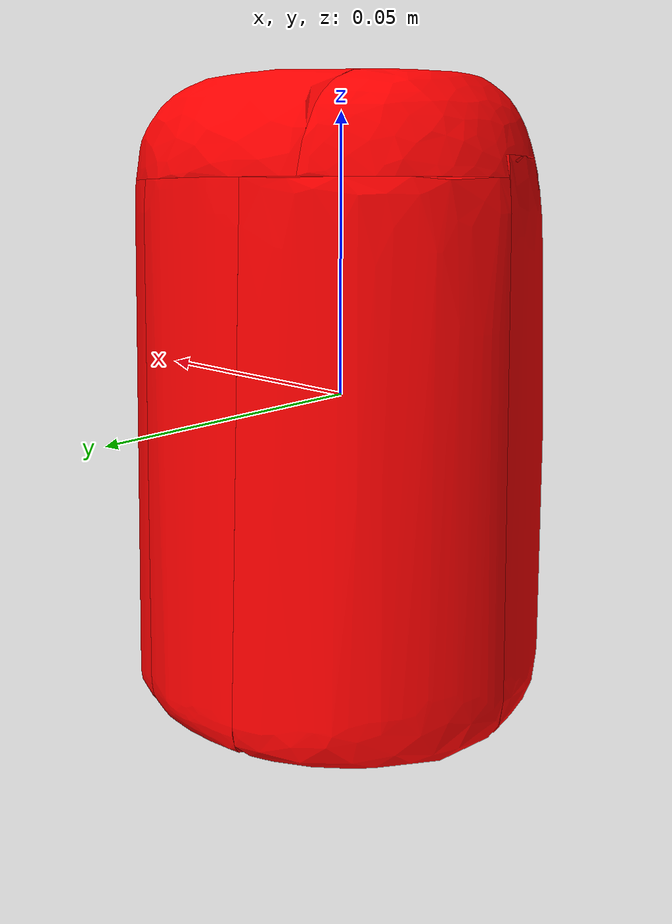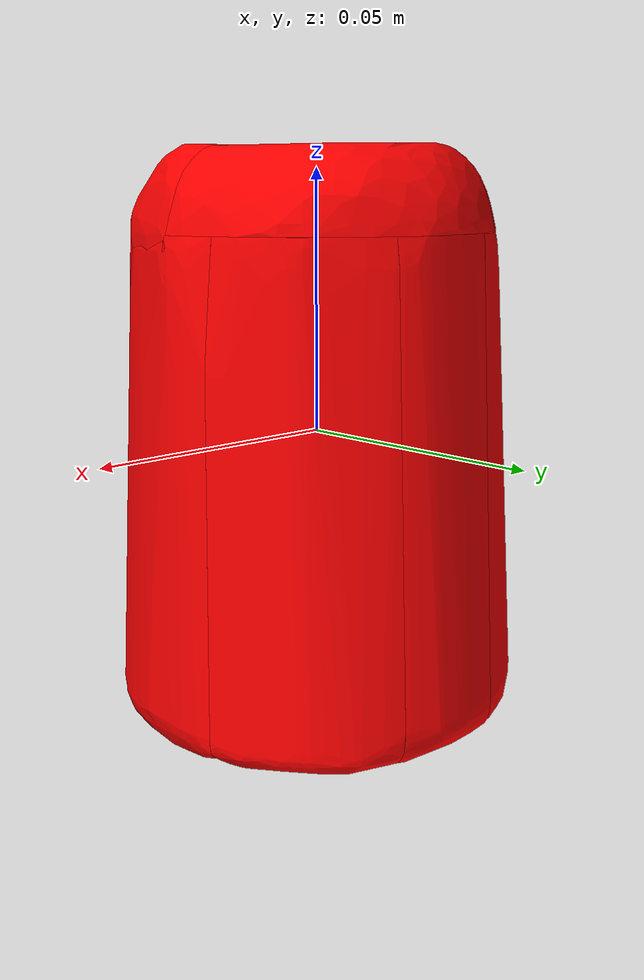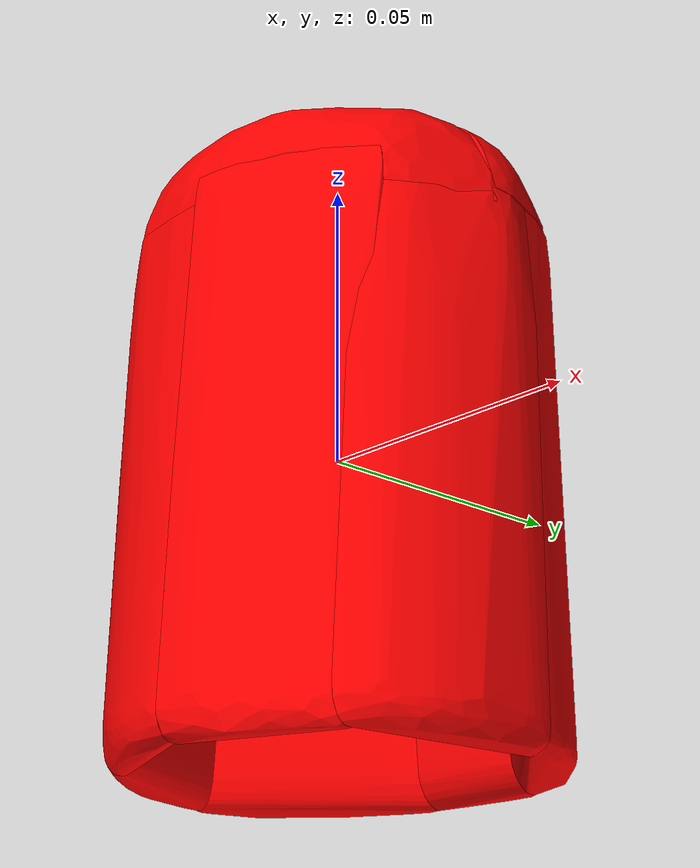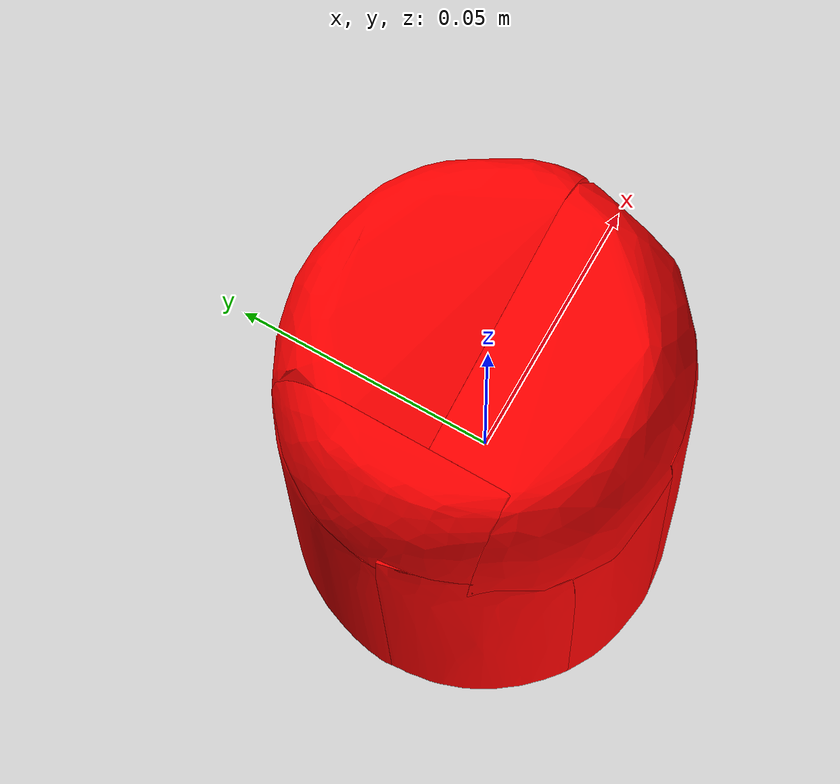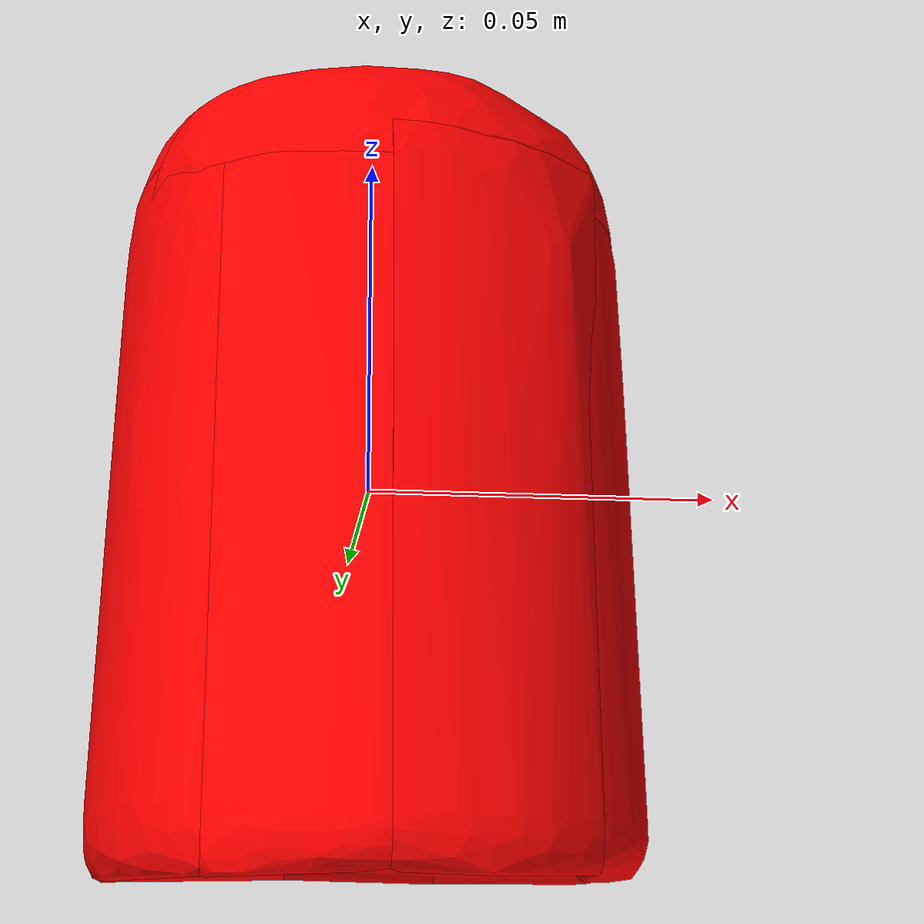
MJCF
<mujoco>
    <asset>
        <mesh name="C_cup1" file="Collision/cup1.stl"/>
        <mesh name="C_cup2" file="Collision/cup2.stl"/>
        <mesh name="C_cup3" file="Collision/cup3.stl"/>
        <mesh name="C_cup4" file="Collision/cup4.stl"/>
        <mesh name="C_cup5" file="Collision/cup5.stl"/>
        <mesh name="C_cup6" file="Collision/cup6.stl"/>
        <mesh name="C_cup7" file="Collision/cup7.stl"/>
        <mesh name="C_cup8" file="Collision/cup8.stl"/>
        <mesh name="C_cup9" file="Collision/cup9.stl"/>
        <mesh name="C_cup10" file="Collision/cup10.stl"/>
        <mesh name="V_cup" file="Visual/cup.stl"/>
        <material name="object" specular="0.75" shininess="0.1" reflectance="0.3" rgba="1.0 0.0 0.0 1.0"/>
        <material name="object_ref" specular="0.75" shininess="0.1" reflectance="0.3" rgba="1.0 0.0 0.0 1.0"/>
    </asset>
    <worldbody>
        <body name="cup" pos="0 0 0" quat="1 0 0 0">
            <geom name = "C_cup1" condim="3" density="1000" friction="1 0.5 0.1" group="1" conaffinity="1" contype="1" solref="-6000 -300" solimp="1.0 0.95 0.001 0.5 2" mesh="C_cup1" type="mesh" material="object"/>
            <geom name = "C_cup2" condim="3" density="1000" friction="1 0.5 0.1" group="1" conaffinity="1" contype="1" solref="-6000 -300" solimp="1.0 0.95 0.001 0.5 2" mesh="C_cup2" type="mesh" material="object"/>
            <geom name = "C_cup3" condim="3" density="1000" friction="1 0.5 0.1" group="1" conaffinity="1" contype="1" solref="-6000 -300" solimp="1.0 0.95 0.001 0.5 2" mesh="C_cup3" type="mesh" material="object"/>
            <geom name = "C_cup4" condim="3" density="1000" friction="1 0.5 0.1" group="1" conaffinity="1" contype="1" solref="-6000 -300" solimp="1.0 0.95 0.001 0.5 2" mesh="C_cup4" type="mesh" material="object"/>
            <geom name = "C_cup5" condim="3" density="1000" friction="1 0.5 0.1" group="1" conaffinity="1" contype="1" solref="-6000 -300" solimp="1.0 0.95 0.001 0.5 2" mesh="C_cup5" type="mesh" material="object"/>
            <geom name = "C_cup6" condim="3" density="1000" friction="1 0.5 0.1" group="1" conaffinity="1" contype="1" solref="-6000 -300" solimp="1.0 0.95 0.001 0.5 2" mesh="C_cup6" type="mesh" material="object"/>
            <geom name = "C_cup7" condim="3" density="1000" friction="1 0.5 0.1" group="1" conaffinity="1" contype="1" solref="-6000 -300" solimp="1.0 0.95 0.001 0.5 2" mesh="C_cup7" type="mesh" material="object"/>
            <geom name = "C_cup8" condim="3" density="1000" friction="1 0.5 0.1" group="1" conaffinity="1" contype="1" solref="-6000 -300" solimp="1.0 0.95 0.001 0.5 2" mesh="C_cup8" type="mesh" material="object"/>
            <geom name = "C_cup9" condim="3" density="1000" friction="1 0.5 0.1" group="1" conaffinity="1" contype="1" solref="-6000 -300" solimp="1.0 0.95 0.001 0.5 2" mesh="C_cup9" type="mesh" material="object"/>
            <geom name = "C_cup10" condim="3" density="1000" friction="1 0.5 0.1" group="1" conaffinity="1" contype="1" solref="-6000 -300" solimp="1.0 0.95 0.001 0.5 2" mesh="C_cup10" type="mesh" material="object"/>

            <geom name = "V_cup" conaffinity="0" contype="0" group="4" mesh="V_cup" type="mesh" material="object"/>
            <joint armature="0.001" damping="0" frictionloss="0.001" limited="false" type="free" />
        </body>
    </worldbody>
</mujoco>
